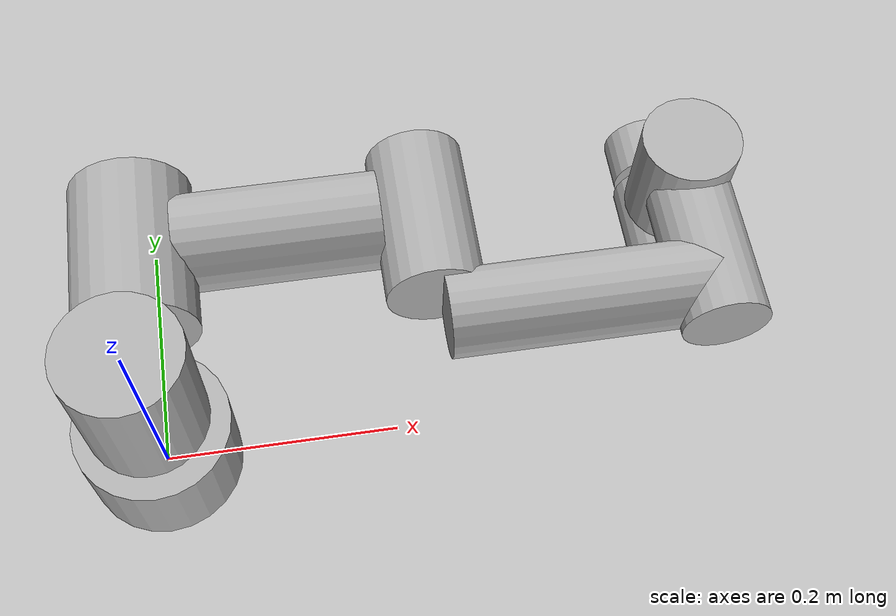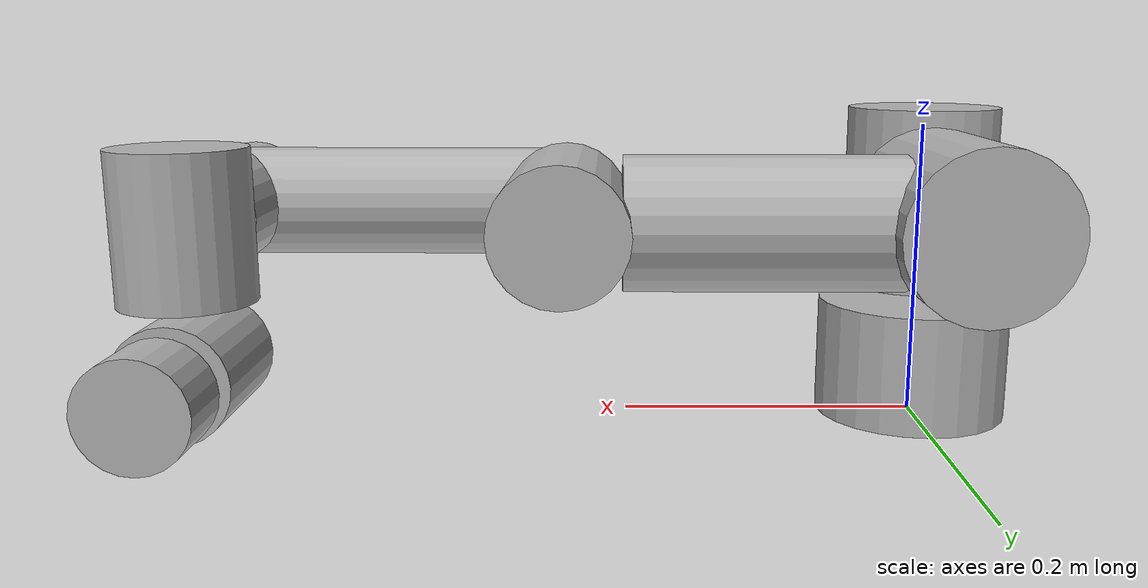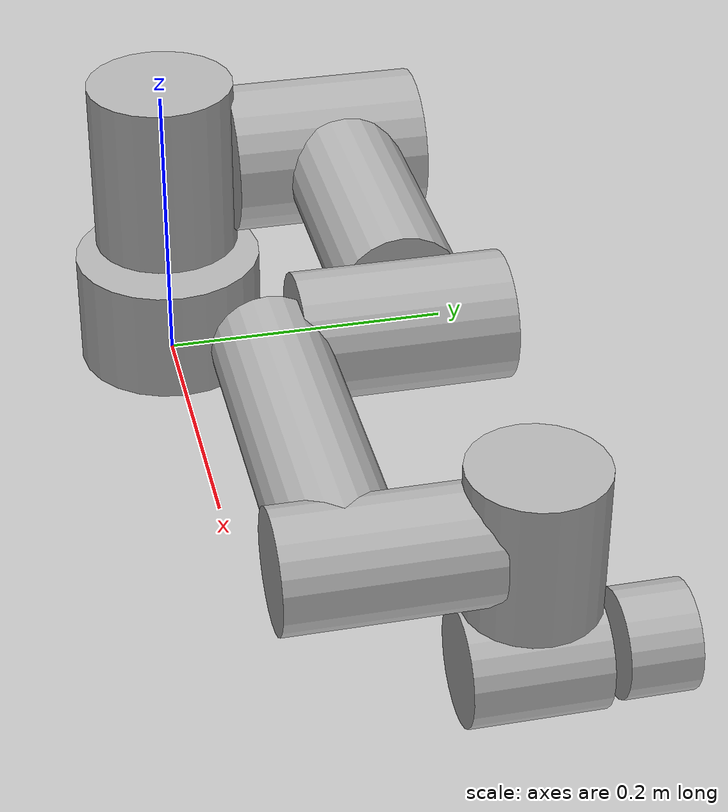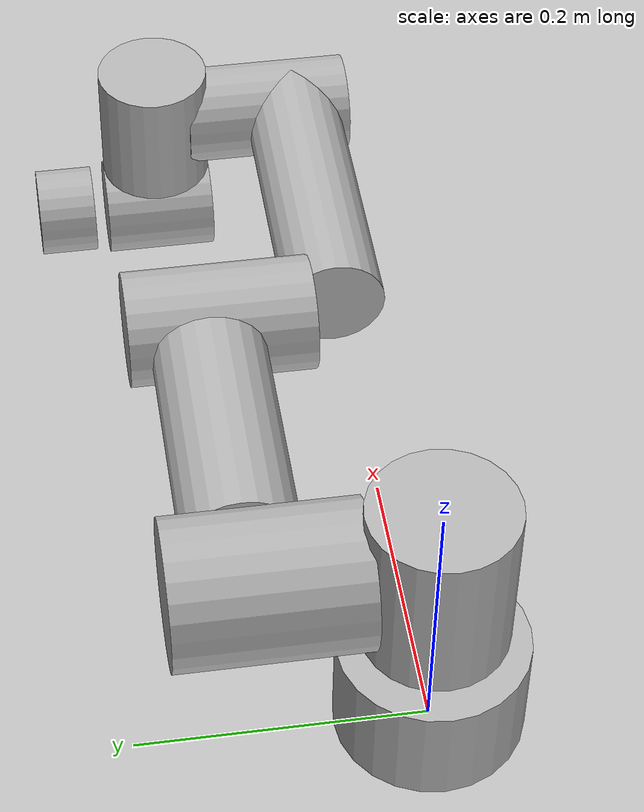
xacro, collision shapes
<?xml version="1.0"?>
<robot xmlns:xacro="http://ros.org/wiki/xacro"
       name="ur3e" >

  <!--
  Per https://github.com/ros-industrial/universal_robot/blob/melodic-devel/ur_description/package.xml
  the ur_description package from which these files are derived is BSD licensed.
-->

  <!-- ur3e -->
  <xacro:include filename="ur3e_primitive_collision.urdf.xacro" />

  <!-- arm -->
  <!-- We limit joint limits to [-pi, pi] rather than the full range [-2pi, 2pi]
       since the larger limits cause problems with planning. -->
  <xacro:ur3e_robot prefix="ur_" joint_limited="true"/>
</robot>

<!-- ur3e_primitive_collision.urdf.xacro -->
<robot xmlns:xacro="http://ros.org/wiki/xacro" xmlns:drake="https://drake.mit.edu">

<!--
  TODO(calderpg, sam.creasey, ggould) The acceleration limits in this file are wrong.
  Try to find the right value, which may need to coordinate with the driver.
-->

  <xacro:include filename="ur.transmission.xacro" />

   <xacro:macro name="cylinder_inertial" params="radius length mass *origin">
    <inertial>
      <mass value="${mass}" />
      <xacro:insert_block name="origin" />
      <inertia ixx="${0.0833333 * mass * (3 * radius * radius + length * length)}" ixy="0.0" ixz="0.0"
        iyy="${0.0833333 * mass * (3 * radius * radius + length * length)}" iyz="0.0"
        izz="${0.5 * mass * radius * radius}" />
    </inertial>
  </xacro:macro>

  <xacro:macro name="ur3e_robot" params="prefix joint_limited
    shoulder_pan_lower_limit:=${-pi}    shoulder_pan_upper_limit:=${pi}
    shoulder_lift_lower_limit:=${-pi}    shoulder_lift_upper_limit:=${pi}
    elbow_joint_lower_limit:=${-pi}    elbow_joint_upper_limit:=${pi}
    wrist_1_lower_limit:=${-pi}    wrist_1_upper_limit:=${pi}
    wrist_2_lower_limit:=${-pi}    wrist_2_upper_limit:=${pi}
    wrist_3_lower_limit:=${-pi}    wrist_3_upper_limit:=${pi}
    transmission_hw_interface:=hardware_interface/PositionJointInterface
    safety_limits:=false safety_pos_margin:=0.15
    safety_k_position:=20">

    <!-- Inertia parameters -->
    <xacro:property name="base_mass" value="2.0" />  <!-- This mass might be incorrect -->
    <xacro:property name="shoulder_mass" value="2.0" />
    <xacro:property name="upper_arm_mass" value="3.42" />
    <xacro:property name="forearm_mass" value="1.26" />
    <xacro:property name="wrist_1_mass" value="0.8" />
    <xacro:property name="wrist_2_mass" value="0.8" />
    <xacro:property name="wrist_3_mass" value="0.35" />

    <xacro:property name="shoulder_cog" value="0.0 -0.02 0.0" />
    <xacro:property name="upper_arm_cog" value="0.13 0.0 0.1157" />
    <xacro:property name="forearm_cog" value="0.05 0.0 0.0238" />
    <xacro:property name="wrist_1_cog" value="0.0 0.0 0.01" />
    <xacro:property name="wrist_2_cog" value="0.0 0.0 0.01" />
    <xacro:property name="wrist_3_cog" value="0.0 0.0 -0.02" />

    <!-- Kinematic model -->
    <!-- Properties from urcontrol.conf -->
    <xacro:property name="d1" value="0.152" />
    <xacro:property name="a2" value="-0.244" />
    <xacro:property name="a3" value="-0.213" />
    <xacro:property name="d4" value="0.104" />
    <xacro:property name="d5" value="0.085" />
    <xacro:property name="d6" value="0.092" />

    <!-- Arbitrary offsets for shoulder/elbow joints -->
    <xacro:property name="shoulder_offset" value="0.120" />  <!-- measured from model -->
    <xacro:property name="elbow_offset" value="-0.093" /> <!-- measured from model -->

    <!-- link lengths used in model -->
    <xacro:property name="shoulder_height" value="${d1}" />
    <xacro:property name="upper_arm_length" value="${-a2}" />
    <xacro:property name="forearm_length" value="${-a3}" />
    <xacro:property name="wrist_1_length" value="${d4}" />
    <xacro:property name="wrist_2_length" value="${d5}" />
    <xacro:property name="wrist_3_length" value="${d6}" />

    <link name="${prefix}base_link" >
      <visual>
        <origin rpy="0 0 0" xyz="0.0 0.0 0.0"/>
        <geometry>
          <mesh filename="package://drake/manipulation/models/ur3e_description/meshes/visual/base.obj"/>
        </geometry>
        <material name="LightGrey">
          <color rgba="0.7 0.7 0.7 1.0"/>
        </material>
      </visual>
      <!-- Base joint -->
      <collision>
        <origin rpy="0.0 0.0 0.0" xyz="0.0 0.0 0.04"/>
	<geometry>
	  <cylinder radius="0.065" length="0.08"/>
	</geometry>
      </collision>
      <xacro:cylinder_inertial radius="0.075" length="0.038" mass="${base_mass}">
        <origin xyz="0.0 0.0 0.0" rpy="0 0 0" />
      </xacro:cylinder_inertial>
    </link>

    <joint name="${prefix}shoulder_pan_joint" type="revolute">
      <parent link="${prefix}base_link" />
      <child link = "${prefix}shoulder_link" />
      <origin xyz="0.0 0.0 ${shoulder_height}" rpy="0.0 0.0 0.0" />
      <axis xyz="0 0 1" />
      <xacro:unless value="${joint_limited}">
        <limit lower="${-2.0 * pi}" upper="${2.0 * pi}" effort="330.0" velocity="3.14" drake:acceleration="2.5"/>
        <xacro:if value="${safety_limits}">
          <safety_controller soft_lower_limit="${-2.0 * pi + safety_pos_margin}" soft_upper_limit="${2.0 * pi - safety_pos_margin}" k_position="${safety_k_position}" k_velocity="0.0"/>
        </xacro:if>
      </xacro:unless>
      <xacro:if value="${joint_limited}">
        <limit lower="${shoulder_pan_lower_limit}" upper="${shoulder_pan_upper_limit}" effort="330.0" velocity="3.14" drake:acceleration="2.5"/>
        <xacro:if value="${safety_limits}">
          <safety_controller soft_lower_limit="${shoulder_pan_lower_limit + safety_pos_margin}" soft_upper_limit="${shoulder_pan_upper_limit - safety_pos_margin}" k_position="${safety_k_position}" k_velocity="0.0"/>
        </xacro:if>
      </xacro:if>
      <dynamics damping="0.0" friction="0.0"/>
    </joint>

    <link name="${prefix}shoulder_link">
      <visual>
        <origin rpy="0 0 0" xyz="0.0 0.0 0.0"/>
        <geometry>
          <mesh filename="package://drake/manipulation/models/ur3e_description/meshes/visual/shoulder.obj"/>
        </geometry>
        <material name="LightGrey">
          <color rgba="0.7 0.7 0.7 1.0"/>
        </material>
      </visual>
      <collision>
        <origin rpy="0 0 0" xyz="0 0 0" />
	<geometry>
	  <cylinder radius="0.05" length="0.12"/>
	</geometry>
      </collision>
      <xacro:cylinder_inertial radius="0.075" length="0.178" mass="${shoulder_mass}">
        <origin xyz="0.0 0.0 0.0" rpy="0 0 0" />
      </xacro:cylinder_inertial>
    </link>

    <joint name="${prefix}shoulder_lift_joint" type="revolute">
      <parent link="${prefix}shoulder_link" />
      <child link = "${prefix}upper_arm_link" />
      <origin xyz="0.0 ${shoulder_offset} 0.0" rpy="0.0 ${pi / 2.0} 0.0" />
      <axis xyz="0 1 0" />
      <xacro:unless value="${joint_limited}">
        <limit lower="${-2.0 * pi}" upper="${2.0 * pi}" effort="330.0" velocity="3.14" drake:acceleration="2.5"/>
        <xacro:if value="${safety_limits}">
          <safety_controller soft_lower_limit="${-2.0 * pi + safety_pos_margin}" soft_upper_limit="${2.0 * pi - safety_pos_margin}" k_position="${safety_k_position}" k_velocity="0.0"/>
        </xacro:if>
      </xacro:unless>
      <xacro:if value="${joint_limited}">
        <limit lower="${shoulder_lift_lower_limit}" upper="${shoulder_lift_upper_limit}" effort="330.0" velocity="3.14" drake:acceleration="2.5"/>
        <xacro:if value="${safety_limits}">
          <safety_controller soft_lower_limit="${shoulder_lift_lower_limit + safety_pos_margin}" soft_upper_limit="${shoulder_lift_upper_limit - safety_pos_margin}" k_position="${safety_k_position}" k_velocity="0.0"/>
        </xacro:if>
      </xacro:if>
      <dynamics damping="0.0" friction="0.0"/>
    </joint>

    <link name="${prefix}upper_arm_link">
      <visual>
        <origin rpy="0 0 0" xyz="0.0 0.0 0.0"/>
        <geometry>
          <mesh filename="package://drake/manipulation/models/ur3e_description/meshes/visual/upperarm.obj"/>
        </geometry>
        <material name="LightGrey">
          <color rgba="0.7 0.7 0.7 1.0"/>
        </material>
      </visual>
      <collision>
        <origin rpy="0 0 0" xyz="0 0 ${-a2/2.0}" />
	<geometry>
	  <cylinder radius="0.04" length="${-a2-0.08}"/>
	</geometry>
      </collision>
      <collision>
        <origin rpy="${pi / 2} 0 0" xyz="0 -0.01 0.005" />
        <geometry>
          <cylinder radius="0.05" length="0.13"/>
        </geometry>
      </collision>
      <collision>
        <origin rpy="${pi / 2} 0 0" xyz="0 -0.01 ${-a2-0.005}"/>
        <geometry>
          <cylinder radius="0.04" length="0.13"/>
        </geometry>
      </collision>
      <xacro:cylinder_inertial radius="0.075" length="${-a2}" mass="${upper_arm_mass}">
        <origin xyz="0.0 0.0 ${-a2/2.0}" rpy="0 0 0" />
      </xacro:cylinder_inertial>
    </link>

    <joint name="${prefix}elbow_joint" type="revolute">
      <parent link="${prefix}upper_arm_link" />
      <child link = "${prefix}forearm_link" />
      <origin xyz="0.0 ${elbow_offset} ${upper_arm_length}" rpy="0.0 0.0 0.0" />
      <axis xyz="0 1 0" />
      <xacro:unless value="${joint_limited}">
        <limit lower="${-pi}" upper="${pi}" effort="150.0" velocity="3.14" drake:acceleration="2.5"/>
        <xacro:if value="${safety_limits}">
          <safety_controller soft_lower_limit="${-2.0 * pi + safety_pos_margin}" soft_upper_limit="${2.0 * pi - safety_pos_margin}" k_position="${safety_k_position}" k_velocity="0.0"/>
        </xacro:if>
      </xacro:unless>
      <xacro:if value="${joint_limited}">
        <limit lower="${elbow_joint_lower_limit}" upper="${elbow_joint_upper_limit}" effort="150.0" velocity="3.14" drake:acceleration="2.5"/>
        <xacro:if value="${safety_limits}">
          <safety_controller soft_lower_limit="${elbow_joint_lower_limit + safety_pos_margin}" soft_upper_limit="${elbow_joint_upper_limit - safety_pos_margin}" k_position="${safety_k_position}" k_velocity="0.0"/>
        </xacro:if>
      </xacro:if>
      <dynamics damping="0.0" friction="0.0"/>
    </joint>

    <link name="${prefix}forearm_link">
      <visual>
        <origin rpy="0 0 0" xyz="0.0 0.0 0.0"/>
        <geometry>
          <mesh filename="package://drake/manipulation/models/ur3e_description/meshes/visual/forearm.obj"/>
        </geometry>
        <material name="LightGrey">
          <color rgba="0.7 0.7 0.7 1.0"/>
        </material>
      </visual>
      <collision>
        <origin rpy="0 0 0" xyz="0 0 ${-a3/2.0}"/>
	<geometry>
	  <cylinder radius="0.035" length="${-a3}"/>
	</geometry>
      </collision>
      <collision>
        <origin rpy="${pi / 2} 0 0" xyz="0 0.02 ${-a3}"/>
        <geometry>
	  <cylinder radius="0.035" length="0.12"/>
        </geometry>
      </collision>
      <xacro:cylinder_inertial radius="0.075" length="${-a3}" mass="${forearm_mass}">
        <origin xyz="0.0 0.0 ${-a3/2.0}" rpy="0 0 0" />
      </xacro:cylinder_inertial>
    </link>

    <joint name="${prefix}wrist_1_joint" type="revolute">
      <parent link="${prefix}forearm_link" />
      <child link = "${prefix}wrist_1_link" />
      <origin xyz="0.0 0.0 ${forearm_length}" rpy="0.0 ${pi / 2.0} 0.0" />
      <axis xyz="0 1 0" />
      <xacro:unless value="${joint_limited}">
        <limit lower="${-2.0 * pi}" upper="${2.0 * pi}" effort="54.0" velocity="6.28" drake:acceleration="2.5"/>
        <xacro:if value="${safety_limits}">
          <safety_controller soft_lower_limit="${-2.0 * pi + safety_pos_margin}" soft_upper_limit="${2.0 * pi - safety_pos_margin}" k_position="${safety_k_position}" k_velocity="0.0"/>
        </xacro:if>
      </xacro:unless>
      <xacro:if value="${joint_limited}">
        <limit lower="${wrist_1_lower_limit}" upper="${wrist_1_upper_limit}" effort="54.0" velocity="6.28" drake:acceleration="2.5"/>
        <xacro:if value="${safety_limits}">
          <safety_controller soft_lower_limit="${wrist_1_lower_limit + safety_pos_margin}" soft_upper_limit="${wrist_1_upper_limit - safety_pos_margin}" k_position="${safety_k_position}" k_velocity="0.0"/>
        </xacro:if>
      </xacro:if>
      <dynamics damping="0.0" friction="0.0"/>
    </joint>

    <link name="${prefix}wrist_1_link">
      <visual>
        <origin rpy="0 0 0" xyz="0.0 0.0 0.0"/>
        <geometry>
          <mesh filename="package://drake/manipulation/models/ur3e_description/meshes/visual/wrist1.obj"/>
        </geometry>
        <material name="LightGrey">
          <color rgba="0.7 0.7 0.7 1.0"/>
        </material>
      </visual>
      <collision>
        <origin rpy="0 0 0" xyz="0 ${wrist_1_length} 0"/>
	<geometry>
	  <cylinder radius="0.04" length="0.09"/>
	</geometry>
      </collision>
      <xacro:cylinder_inertial radius="0.075" length="0.12" mass="${wrist_1_mass}">
        <origin xyz="0.0 ${wrist_1_length} 0.0" rpy="0 0 0" />
      </xacro:cylinder_inertial>
    </link>

    <joint name="${prefix}wrist_2_joint" type="revolute">
      <parent link="${prefix}wrist_1_link" />
      <child link = "${prefix}wrist_2_link" />
      <origin xyz="0.0 ${wrist_1_length} 0.0" rpy="0.0 0.0 0.0" />
      <axis xyz="0 0 1" />
      <xacro:unless value="${joint_limited}">
        <limit lower="${-2.0 * pi}" upper="${2.0 * pi}" effort="54.0" velocity="6.28" drake:acceleration="2.5"/>
        <xacro:if value="${safety_limits}">
          <safety_controller soft_lower_limit="${-2.0 * pi + safety_pos_margin}" soft_upper_limit="${2.0 * pi - safety_pos_margin}" k_position="${safety_k_position}" k_velocity="0.0"/>
        </xacro:if>
      </xacro:unless>
      <xacro:if value="${joint_limited}">
        <limit lower="${wrist_2_lower_limit}" upper="${wrist_2_upper_limit}" effort="54.0" velocity="6.28" drake:acceleration="2.5"/>
        <xacro:if value="${safety_limits}">
          <safety_controller soft_lower_limit="${wrist_2_lower_limit + safety_pos_margin}" soft_upper_limit="${wrist_2_upper_limit - safety_pos_margin}" k_position="${safety_k_position}" k_velocity="0.0"/>
        </xacro:if>
      </xacro:if>
      <dynamics damping="0.0" friction="0.0"/>
    </joint>

    <link name="${prefix}wrist_2_link">
      <origin rpy="${pi / 2} 0 0" xyz="0.0 0.0 0.0"/>
      <visual>
        <origin rpy="0 0 0" xyz="0.0 0.0 0.0"/>
        <geometry>
          <mesh filename="package://drake/manipulation/models/ur3e_description/meshes/visual/wrist2.obj"/>
        </geometry>
        <material name="LightGrey">
          <color rgba="0.7 0.7 0.7 1.0"/>
        </material>
      </visual>
      <collision>
        <origin rpy="${pi / 2} 0 0" xyz="0 0 ${wrist_2_length}"/>
	<geometry>
	  <cylinder radius="0.035" length="0.08"/>
	</geometry>
      </collision>
      <xacro:cylinder_inertial radius="0.075" length="0.12" mass="${wrist_2_mass}">
        <origin xyz="0.0 0.0 ${wrist_2_length}" rpy="0 0 0" />
      </xacro:cylinder_inertial>
    </link>

    <joint name="${prefix}wrist_3_joint" type="revolute">
      <parent link="${prefix}wrist_2_link" />
      <child link = "${prefix}wrist_3_link" />
      <origin xyz="0.0 0.0 ${wrist_2_length}" rpy="0.0 0.0 0.0" />
      <axis xyz="0 1 0" />
      <xacro:unless value="${joint_limited}">
        <limit lower="${-2.0 * pi}" upper="${2.0 * pi}" effort="54.0" velocity="6.28" drake:acceleration="2.5"/>
        <xacro:if value="${safety_limits}">
          <safety_controller soft_lower_limit="${-2.0 * pi + safety_pos_margin}" soft_upper_limit="${2.0 * pi - safety_pos_margin}" k_position="${safety_k_position}" k_velocity="0.0"/>
        </xacro:if>
      </xacro:unless>
      <xacro:if value="${joint_limited}">
        <limit lower="${wrist_3_lower_limit}" upper="${wrist_3_upper_limit}" effort="54.0" velocity="6.28" drake:acceleration="2.5"/>
        <xacro:if value="${safety_limits}">
          <safety_controller soft_lower_limit="${wrist_3_lower_limit + safety_pos_margin}" soft_upper_limit="${wrist_3_upper_limit - safety_pos_margin}" k_position="${safety_k_position}" k_velocity="0.0"/>
        </xacro:if>
      </xacro:if>
      <dynamics damping="0.0" friction="0.0"/>
    </joint>

    <link name="${prefix}wrist_3_link">
      <visual>
        <origin rpy="0 0 0" xyz="0.0 0.0 0.0"/>
        <geometry>
          <mesh filename="package://drake/manipulation/models/ur3e_description/meshes/visual/wrist3.obj"/>
        </geometry>
        <material name="LightGrey">
          <color rgba="0.7 0.7 0.7 1.0"/>
        </material>
      </visual>
      <collision>
        <origin xyz="0.0 ${wrist_3_length - 0.021} 0.0" rpy="${pi/2} 0 0" />
        <geometry>
          <cylinder radius="0.032" length="0.042"/>
        </geometry>
      </collision>
      <xacro:cylinder_inertial radius="0.032" length="0.042" mass="${wrist_3_mass}">
        <origin xyz="0.0 ${wrist_3_length - 0.021} 0.0" rpy="${pi/2} 0 0" />
      </xacro:cylinder_inertial>
    </link>

    <joint name="${prefix}ee_fixed_joint" type="fixed">
      <parent link="${prefix}wrist_3_link" />
      <child link = "${prefix}ee_link" />
      <origin xyz="0.0 ${wrist_3_length} 0.0" rpy="0.0 0.0 ${pi/2.0}" />
    </joint>

    <link name="${prefix}ee_link"/>

    <xacro:ur_arm_transmission prefix="${prefix}" />

    <!-- ROS base_link to UR 'Base' Coordinates transform -->
    <link name="${prefix}base"/>
    <joint name="${prefix}base_link-base_fixed_joint" type="fixed">
      <!-- NOTE: this rotation is only needed as long as base_link itself is
                 not corrected wrt the real robot (ie: rotated over 180
                 degrees)
      -->
      <origin xyz="0 0 0" rpy="0 0 ${-pi}"/>
      <parent link="${prefix}base_link"/>
      <child link="${prefix}base"/>
    </joint>

    <!-- Frame coincident with all-zeros TCP on UR controller -->
    <link name="${prefix}tool0"/>
    <joint name="${prefix}wrist_3_link-tool0_fixed_joint" type="fixed">
      <origin xyz="0 ${wrist_3_length} 0" rpy="${pi/-2.0} 0 0"/>
      <parent link="${prefix}wrist_3_link"/>
      <child link="${prefix}tool0"/>
    </joint>

  </xacro:macro>
</robot>
